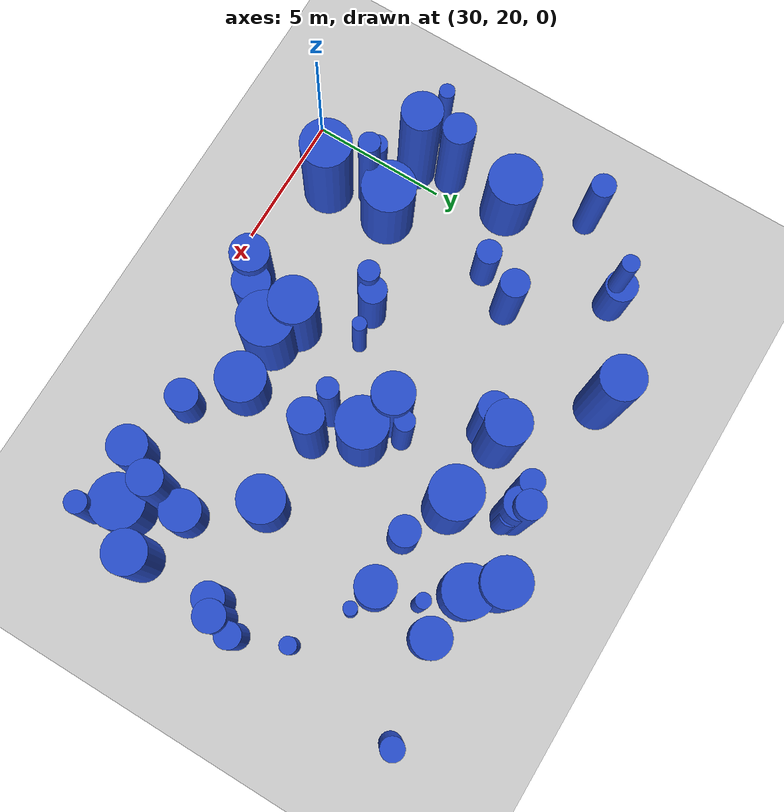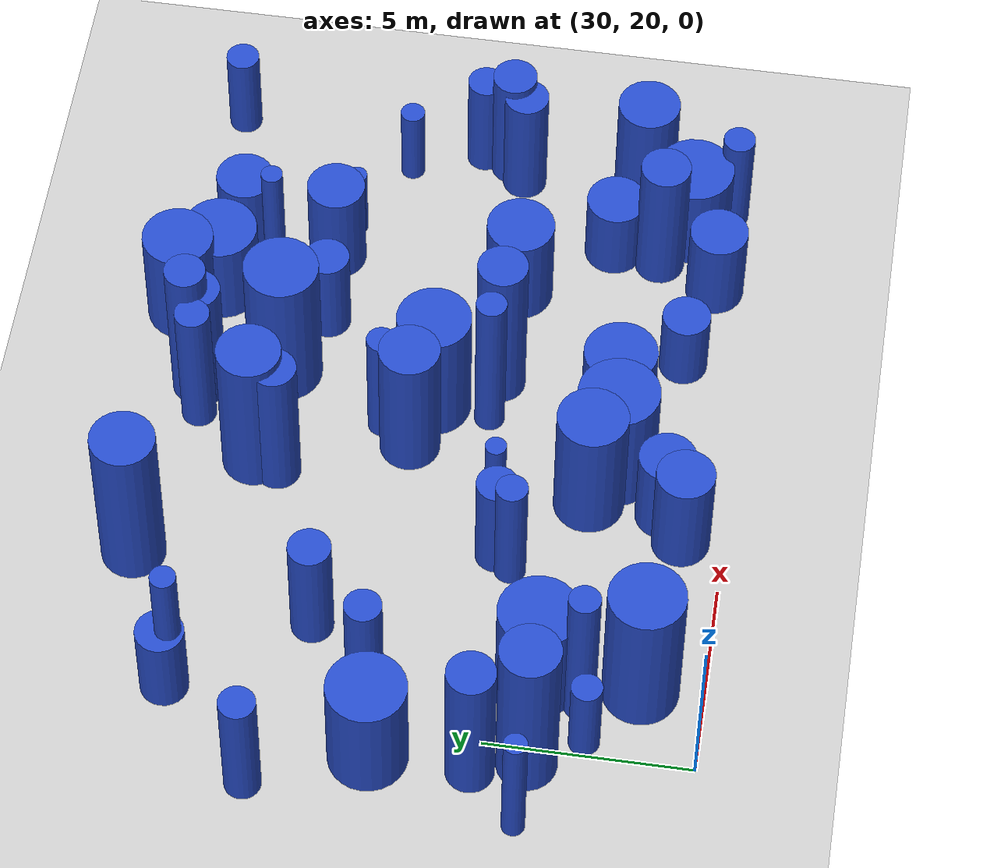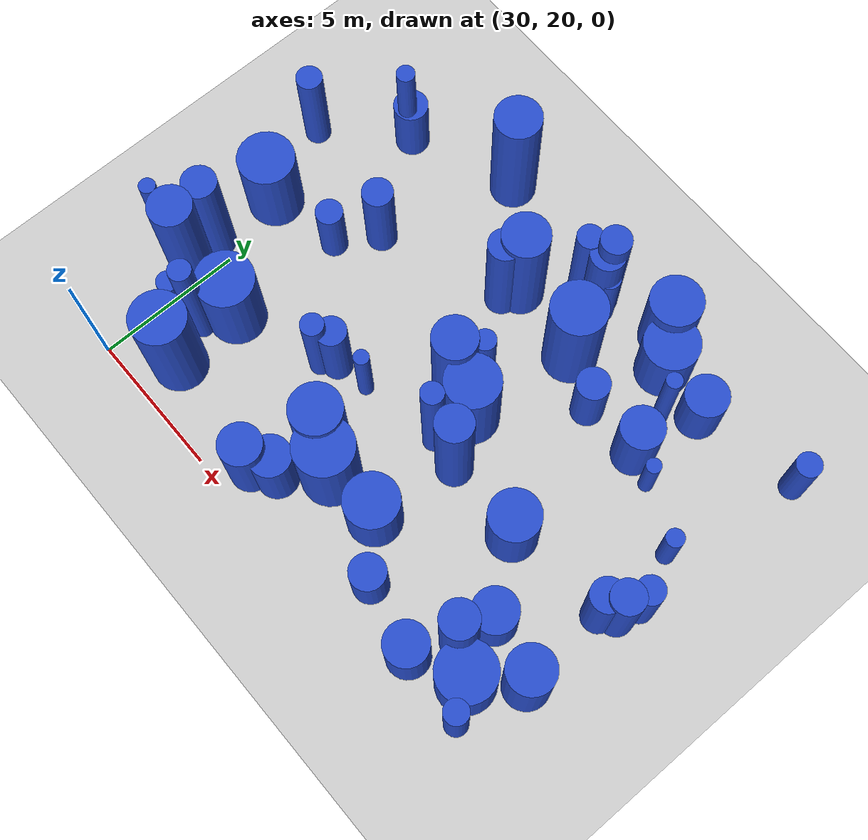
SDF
<sdf version="1.6">
 <world name="default">
  <model name="ground_plane">
   <static>1</static>
   <link name="link">
    <collision name="collision">
     <geometry><plane><normal>0 0 1</normal><size>100 100</size></plane></geometry>
     <surface><friction><ode><mu>100</mu><mu2>50</mu2></ode></friction></surface>
    </collision>
    <visual name="visual">
     <cast_shadows>0</cast_shadows>
     <geometry><plane><normal>0 0 1</normal><size>100 100</size></plane></geometry>
     <material>
      <script><uri>file://media/materials/scripts/gazebo.material</uri><name>Gazebo/Grey</name></script>
     </material>
    </visual>
   </link>
  </model>
  <model name="7">
   <static>0</static>
   <link name="link">
    <inertial>
     <mass>2</mass>
     <inertia><ixx>2.10084</ixx><ixy>0</ixy><ixz>0</ixz><iyy>2.10084</iyy><iyz>0</iyz><izz>0.955069</izz></inertia>
    </inertial>
    <collision name="collision">
     <geometry><cylinder><length>3.12087</length><radius>0.977276</radius></cylinder></geometry>
     <surface><contact><collide_without_contact>1</collide_without_contact></contact></surface>
    </collision>
    <visual name="visual">
     <geometry><cylinder><length>3.12087</length><radius>0.977276</radius></cylinder></geometry>
     <material>
      <script><uri>file://media/materials/scripts/gazebo.material</uri><name>Gazebo/Blue</name></script>
     </material>
    </visual>
    <gravity>0</gravity>
   </link>
   <pose>31.8249 23.959 1.56043 0 -0 0</pose>
  </model>
  <model name="23">
   <static>0</static>
   <link name="link">
    <inertial>
     <mass>2</mass>
     <inertia>
      <ixx>1.99669</ixx>
      <ixy>0</ixy>
      <ixz>0</ixz>
      <iyy>1.99669</iyy>
      <iyz>0</iyz>
      <izz>0.0728803</izz>
     </inertia>
    </inertial>
    <collision name="collision">
     <geometry><cylinder><length>3.42951</length><radius>0.269963</radius></cylinder></geometry>
     <surface><contact><collide_without_contact>1</collide_without_contact></contact></surface>
    </collision>
    <visual name="visual">
     <geometry><cylinder><length>3.42951</length><radius>0.269963</radius></cylinder></geometry>
     <material>
      <script><uri>file://media/materials/scripts/gazebo.material</uri><name>Gazebo/Blue</name></script>
     </material>
    </visual>
    <gravity>0</gravity>
   </link>
   <pose>43.393 32.1814 1.71475 0 -0 0</pose>
  </model>
  <model name="25">
   <static>0</static>
   <link name="link">
    <inertial>
     <mass>2</mass>
     <inertia><ixx>3.21255</ixx><ixy>0</ixy><ixz>0</ixz><iyy>3.21255</iyy><iyz>0</iyz><izz>0.847452</izz></inertia>
    </inertial>
    <collision name="collision">
     <geometry><cylinder><length>4.0906</length><radius>0.920571</radius></cylinder></geometry>
     <surface><contact><collide_without_contact>1</collide_without_contact></contact></surface>
    </collision>
    <visual name="visual">
     <geometry><cylinder><length>4.0906</length><radius>0.920571</radius></cylinder></geometry>
     <material>
      <script><uri>file://media/materials/scripts/gazebo.material</uri><name>Gazebo/Blue</name></script>
     </material>
    </visual>
    <gravity>0</gravity>
   </link>
   <pose>31.9637 21.5128 2.0453 0 -0 0</pose>
  </model>
  <model name="35">
   <static>0</static>
   <link name="link">
    <inertial>
     <mass>2</mass>
     <inertia><ixx>3.57551</ixx><ixy>0</ixy><ixz>0</ixz><iyy>3.57551</iyy><iyz>0</iyz><izz>0.622149</izz></inertia>
    </inertial>
    <collision name="collision">
     <geometry><cylinder><length>4.42568</length><radius>0.788764</radius></cylinder></geometry>
     <surface><contact><collide_without_contact>1</collide_without_contact></contact></surface>
    </collision>
    <visual name="visual">
     <geometry><cylinder><length>4.42568</length><radius>0.788764</radius></cylinder></geometry>
     <material>
      <script><uri>file://media/materials/scripts/gazebo.material</uri><name>Gazebo/Blue</name></script>
     </material>
    </visual>
    <gravity>0</gravity>
   </link>
   <pose>37.2175 31.6348 2.21284 0 -0 0</pose>
  </model>
  <model name="39">
   <static>0</static>
   <link name="link">
    <inertial>
     <mass>2</mass>
     <inertia><ixx>1.9999</ixx><ixy>0</ixy><ixz>0</ixz><iyy>1.9999</iyy><iyz>0</iyz><izz>0.310791</izz></inertia>
    </inertial>
    <collision name="collision">
     <geometry><cylinder><length>3.32671</length><radius>0.557487</radius></cylinder></geometry>
     <surface><contact><collide_without_contact>1</collide_without_contact></contact></surface>
    </collision>
    <visual name="visual">
     <geometry><cylinder><length>3.32671</length><radius>0.557487</radius></cylinder></geometry>
     <material>
      <script><uri>file://media/materials/scripts/gazebo.material</uri><name>Gazebo/Blue</name></script>
     </material>
    </visual>
    <gravity>0</gravity>
   </link>
   <pose>46.8839 26.2899 1.66335 0 -0 0</pose>
  </model>
  <model name="59">
   <static>0</static>
   <link name="link">
    <inertial>
     <mass>2</mass>
     <inertia><ixx>2.25511</ixx><ixy>0</ixy><ixz>0</ixz><iyy>2.25511</iyy><iyz>0</iyz><izz>0.311242</izz></inertia>
    </inertial>
    <collision name="collision">
     <geometry><cylinder><length>3.54921</length><radius>0.557891</radius></cylinder></geometry>
     <surface><contact><collide_without_contact>1</collide_without_contact></contact></surface>
    </collision>
    <visual name="visual">
     <geometry><cylinder><length>3.54921</length><radius>0.557891</radius></cylinder></geometry>
     <material>
      <script><uri>file://media/materials/scripts/gazebo.material</uri><name>Gazebo/Blue</name></script>
     </material>
    </visual>
    <gravity>0</gravity>
   </link>
   <pose>47.3223 26.6492 1.77461 0 -0 0</pose>
  </model>
  <model name="61">
   <static>0</static>
   <link name="link">
    <inertial>
     <mass>2</mass>
     <inertia><ixx>1.07857</ixx><ixy>0</ixy><ixz>0</ixz><iyy>1.07857</iyy><iyz>0</iyz><izz>0.520724</izz></inertia>
    </inertial>
    <collision name="collision">
     <geometry><cylinder><length>2.21568</length><radius>0.721612</radius></cylinder></geometry>
     <surface><contact><collide_without_contact>1</collide_without_contact></contact></surface>
    </collision>
    <visual name="visual">
     <geometry><cylinder><length>2.21568</length><radius>0.721612</radius></cylinder></geometry>
     <material>
      <script><uri>file://media/materials/scripts/gazebo.material</uri><name>Gazebo/Blue</name></script>
     </material>
    </visual>
    <gravity>0</gravity>
   </link>
   <pose>44.2138 33.044 1.10784 0 -0 0</pose>
  </model>
  <model name="83">
   <static>0</static>
   <link name="link">
    <inertial>
     <mass>2</mass>
     <inertia><ixx>1.94416</ixx><ixy>0</ixy><ixz>0</ixz><iyy>1.94416</iyy><iyz>0</iyz><izz>0.270411</izz></inertia>
    </inertial>
    <collision name="collision">
     <geometry><cylinder><length>3.2945</length><radius>0.52001</radius></cylinder></geometry>
     <surface><contact><collide_without_contact>1</collide_without_contact></contact></surface>
    </collision>
    <visual name="visual">
     <geometry><cylinder><length>3.2945</length><radius>0.52001</radius></cylinder></geometry>
     <material>
      <script><uri>file://media/materials/scripts/gazebo.material</uri><name>Gazebo/Blue</name></script>
     </material>
    </visual>
    <gravity>0</gravity>
   </link>
   <pose>32.6703 29.4361 1.64725 0 -0 0</pose>
  </model>
  <model name="86">
   <static>0</static>
   <link name="link">
    <inertial>
     <mass>2</mass>
     <inertia><ixx>2.20974</ixx><ixy>0</ixy><ixz>0</ixz><iyy>2.20974</iyy><iyz>0</iyz><izz>0.600986</izz></inertia>
    </inertial>
    <collision name="collision">
     <geometry><cylinder><length>3.38459</length><radius>0.775233</radius></cylinder></geometry>
     <surface><contact><collide_without_contact>1</collide_without_contact></contact></surface>
    </collision>
    <visual name="visual">
     <geometry><cylinder><length>3.38459</length><radius>0.775233</radius></cylinder></geometry>
     <material>
      <script><uri>file://media/materials/scripts/gazebo.material</uri><name>Gazebo/Blue</name></script>
     </material>
    </visual>
    <gravity>0</gravity>
   </link>
   <pose>47.0507 23.2137 1.6923 0 -0 0</pose>
  </model>
  <model name="126">
   <static>0</static>
   <link name="link">
    <inertial>
     <mass>2</mass>
     <inertia><ixx>1.27835</ixx><ixy>0</ixy><ixz>0</ixz><iyy>1.27835</iyy><iyz>0</iyz><izz>0.146754</izz></inertia>
    </inertial>
    <collision name="collision">
     <geometry><cylinder><length>2.68883</length><radius>0.383085</radius></cylinder></geometry>
     <surface><contact><collide_without_contact>1</collide_without_contact></contact></surface>
    </collision>
    <visual name="visual">
     <geometry><cylinder><length>2.68883</length><radius>0.383085</radius></cylinder></geometry>
     <material>
      <script><uri>file://media/materials/scripts/gazebo.material</uri><name>Gazebo/Blue</name></script>
     </material>
    </visual>
    <gravity>0</gravity>
   </link>
   <pose>39.4717 33.2369 1.34442 0 -0 0</pose>
  </model>
  <model name="144">
   <static>0</static>
   <link name="link">
    <inertial>
     <mass>2</mass>
     <inertia><ixx>1.29793</ixx><ixy>0</ixy><ixz>0</ixz><iyy>1.29793</iyy><iyz>0</iyz><izz>0.832214</izz></inertia>
    </inertial>
    <collision name="collision">
     <geometry><cylinder><length>2.30021</length><radius>0.912257</radius></cylinder></geometry>
     <surface><contact><collide_without_contact>1</collide_without_contact></contact></surface>
    </collision>
    <visual name="visual">
     <geometry><cylinder><length>2.30021</length><radius>0.912257</radius></cylinder></geometry>
     <material>
      <script><uri>file://media/materials/scripts/gazebo.material</uri><name>Gazebo/Blue</name></script>
     </material>
    </visual>
    <gravity>0</gravity>
   </link>
   <pose>40.0746 23.0411 1.1501 0 -0 0</pose>
  </model>
  <model name="150">
   <static>0</static>
   <link name="link">
    <inertial>
     <mass>2</mass>
     <inertia><ixx>1.20795</ixx><ixy>0</ixy><ixz>0</ixz><iyy>1.20795</iyy><iyz>0</iyz><izz>0.525893</izz></inertia>
    </inertial>
    <collision name="collision">
     <geometry><cylinder><length>2.38118</length><radius>0.725185</radius></cylinder></geometry>
     <surface><contact><collide_without_contact>1</collide_without_contact></contact></surface>
    </collision>
    <visual name="visual">
     <geometry><cylinder><length>2.38118</length><radius>0.725185</radius></cylinder></geometry>
     <material>
      <script><uri>file://media/materials/scripts/gazebo.material</uri><name>Gazebo/Blue</name></script>
     </material>
    </visual>
    <gravity>0</gravity>
   </link>
   <pose>44.0581 21.0779 1.19059 0 -0 0</pose>
  </model>
  <model name="155">
   <static>0</static>
   <link name="link">
    <inertial>
     <mass>2</mass>
     <inertia><ixx>2.79613</ixx><ixy>0</ixy><ixz>0</ixz><iyy>2.79613</iyy><iyz>0</iyz><izz>0.33972</izz></inertia>
    </inertial>
    <collision name="collision">
     <geometry><cylinder><length>3.96959</length><radius>0.582855</radius></cylinder></geometry>
     <surface><contact><collide_without_contact>1</collide_without_contact></contact></surface>
    </collision>
    <visual name="visual">
     <geometry><cylinder><length>3.96959</length><radius>0.582855</radius></cylinder></geometry>
     <material>
      <script><uri>file://media/materials/scripts/gazebo.material</uri><name>Gazebo/Blue</name></script>
     </material>
    </visual>
    <gravity>0</gravity>
   </link>
   <pose>39.1888 33.2764 1.98479 0 -0 0</pose>
  </model>
  <model name="174">
   <static>0</static>
   <link name="link">
    <inertial>
     <mass>2</mass>
     <inertia><ixx>1.76318</ixx><ixy>0</ixy><ixz>0</ixz><iyy>1.76318</iyy><iyz>0</iyz><izz>0.613223</izz></inertia>
    </inertial>
    <collision name="collision">
     <geometry><cylinder><length>2.95625</length><radius>0.783086</radius></cylinder></geometry>
     <surface><contact><collide_without_contact>1</collide_without_contact></contact></surface>
    </collision>
    <visual name="visual">
     <geometry><cylinder><length>2.95625</length><radius>0.783086</radius></cylinder></geometry>
     <material>
      <script><uri>file://media/materials/scripts/gazebo.material</uri><name>Gazebo/Blue</name></script>
     </material>
    </visual>
    <gravity>0</gravity>
   </link>
   <pose>38.1527 22.7004 1.47812 0 -0 0</pose>
  </model>
  <model name="175">
   <static>0</static>
   <link name="link">
    <inertial>
     <mass>2</mass>
     <inertia><ixx>1.56998</ixx><ixy>0</ixy><ixz>0</ixz><iyy>1.56998</iyy><iyz>0</iyz><izz>0.215469</izz></inertia>
    </inertial>
    <collision name="collision">
     <geometry><cylinder><length>2.962</length><radius>0.464186</radius></cylinder></geometry>
     <surface><contact><collide_without_contact>1</collide_without_contact></contact></surface>
    </collision>
    <visual name="visual">
     <geometry><cylinder><length>2.962</length><radius>0.464186</radius></cylinder></geometry>
     <material>
      <script><uri>file://media/materials/scripts/gazebo.material</uri><name>Gazebo/Blue</name></script>
     </material>
    </visual>
    <gravity>0</gravity>
   </link>
   <pose>47.5551 27.4058 1.481 0 -0 0</pose>
  </model>
  <model name="186">
   <static>0</static>
   <link name="link">
    <inertial>
     <mass>2</mass>
     <inertia><ixx>2.05452</ixx><ixy>0</ixy><ixz>0</ixz><iyy>2.05452</iyy><iyz>0</iyz><izz>0.150024</izz></inertia>
    </inertial>
    <collision name="collision">
     <geometry><cylinder><length>3.44631</length><radius>0.387329</radius></cylinder></geometry>
     <surface><contact><collide_without_contact>1</collide_without_contact></contact></surface>
    </collision>
    <visual name="visual">
     <geometry><cylinder><length>3.44631</length><radius>0.387329</radius></cylinder></geometry>
     <material>
      <script><uri>file://media/materials/scripts/gazebo.material</uri><name>Gazebo/Blue</name></script>
     </material>
    </visual>
    <gravity>0</gravity>
   </link>
   <pose>34.9087 25.0154 1.72316 0 -0 0</pose>
  </model>
  <model name="189">
   <static>0</static>
   <link name="link">
    <inertial>
     <mass>2</mass>
     <inertia><ixx>3.3322</ixx><ixy>0</ixy><ixz>0</ixz><iyy>3.3322</iyy><iyz>0</iyz><izz>0.849902</izz></inertia>
    </inertial>
    <collision name="collision">
     <geometry><cylinder><length>4.17654</length><radius>0.921901</radius></cylinder></geometry>
     <surface><contact><collide_without_contact>1</collide_without_contact></contact></surface>
    </collision>
    <visual name="visual">
     <geometry><cylinder><length>4.17654</length><radius>0.921901</radius></cylinder></geometry>
     <material>
      <script><uri>file://media/materials/scripts/gazebo.material</uri><name>Gazebo/Blue</name></script>
     </material>
    </visual>
    <gravity>0</gravity>
   </link>
   <pose>39.9815 31.3426 2.08827 0 -0 0</pose>
  </model>
  <model name="191">
   <static>0</static>
   <link name="link">
    <inertial>
     <mass>2</mass>
     <inertia>
      <ixx>0.984393</ixx>
      <ixy>0</ixy>
      <ixz>0</ixz>
      <iyy>0.984393</iyy>
      <iyz>0</iyz>
      <izz>0.552445</izz>
     </inertia>
    </inertial>
    <collision name="collision">
     <geometry><cylinder><length>2.06132</length><radius>0.743266</radius></cylinder></geometry>
     <surface><contact><collide_without_contact>1</collide_without_contact></contact></surface>
    </collision>
    <visual name="visual">
     <geometry><cylinder><length>2.06132</length><radius>0.743266</radius></cylinder></geometry>
     <material>
      <script><uri>file://media/materials/scripts/gazebo.material</uri><name>Gazebo/Blue</name></script>
     </material>
    </visual>
    <gravity>0</gravity>
   </link>
   <pose>44.9695 23.7353 1.03066 0 -0 0</pose>
  </model>
  <model name="206">
   <static>0</static>
   <link name="link">
    <inertial>
     <mass>2</mass>
     <inertia><ixx>3.80967</ixx><ixy>0</ixy><ixz>0</ixz><iyy>3.80967</iyy><iyz>0</iyz><izz>0.380412</izz></inertia>
    </inertial>
    <collision name="collision">
     <geometry><cylinder><length>4.66013</length><radius>0.616775</radius></cylinder></geometry>
     <surface><contact><collide_without_contact>1</collide_without_contact></contact></surface>
    </collision>
    <visual name="visual">
     <geometry><cylinder><length>4.66013</length><radius>0.616775</radius></cylinder></geometry>
     <material>
      <script><uri>file://media/materials/scripts/gazebo.material</uri><name>Gazebo/Blue</name></script>
     </material>
    </visual>
    <gravity>0</gravity>
   </link>
   <pose>40.4302 26.0122 2.33007 0 -0 0</pose>
  </model>
  <model name="237">
   <static>0</static>
   <link name="link">
    <inertial>
     <mass>2</mass>
     <inertia><ixx>1.98057</ixx><ixy>0</ixy><ixz>0</ixz><iyy>1.98057</iyy><iyz>0</iyz><izz>0.912841</izz></inertia>
    </inertial>
    <collision name="collision">
     <geometry><cylinder><length>3.02405</length><radius>0.955427</radius></cylinder></geometry>
     <surface><contact><collide_without_contact>1</collide_without_contact></contact></surface>
    </collision>
    <visual name="visual">
     <geometry><cylinder><length>3.02405</length><radius>0.955427</radius></cylinder></geometry>
     <material>
      <script><uri>file://media/materials/scripts/gazebo.material</uri><name>Gazebo/Blue</name></script>
     </material>
    </visual>
    <gravity>0</gravity>
   </link>
   <pose>29.2851 27.5652 1.51203 0 -0 0</pose>
  </model>
  <model name="242">
   <static>0</static>
   <link name="link">
    <inertial>
     <mass>2</mass>
     <inertia><ixx>1.25281</ixx><ixy>0</ixy><ixz>0</ixz><iyy>1.25281</iyy><iyz>0</iyz><izz>0.303901</izz></inertia>
    </inertial>
    <collision name="collision">
     <geometry><cylinder><length>2.57005</length><radius>0.551272</radius></cylinder></geometry>
     <surface><contact><collide_without_contact>1</collide_without_contact></contact></surface>
    </collision>
    <visual name="visual">
     <geometry><cylinder><length>2.57005</length><radius>0.551272</radius></cylinder></geometry>
     <material>
      <script><uri>file://media/materials/scripts/gazebo.material</uri><name>Gazebo/Blue</name></script>
     </material>
    </visual>
    <gravity>0</gravity>
   </link>
   <pose>41.7102 30.5342 1.28502 0 -0 0</pose>
  </model>
  <model name="243">
   <static>0</static>
   <link name="link">
    <inertial>
     <mass>2</mass>
     <inertia><ixx>2.64476</ixx><ixy>0</ixy><ixz>0</ixz><iyy>2.64476</iyy><iyz>0</iyz><izz>0.384883</izz></inertia>
    </inertial>
    <collision name="collision">
     <geometry><cylinder><length>3.83587</length><radius>0.62039</radius></cylinder></geometry>
     <surface><contact><collide_without_contact>1</collide_without_contact></contact></surface>
    </collision>
    <visual name="visual">
     <geometry><cylinder><length>3.83587</length><radius>0.62039</radius></cylinder></geometry>
     <material>
      <script><uri>file://media/materials/scripts/gazebo.material</uri><name>Gazebo/Blue</name></script>
     </material>
    </visual>
    <gravity>0</gravity>
   </link>
   <pose>44.712 22.5458 1.91794 0 -0 0</pose>
  </model>
  <model name="250">
   <static>0</static>
   <link name="link">
    <inertial>
     <mass>2</mass>
     <inertia><ixx>1.24418</ixx><ixy>0</ixy><ixz>0</ixz><iyy>1.24418</iyy><iyz>0</iyz><izz>0.488213</izz></inertia>
    </inertial>
    <collision name="collision">
     <geometry><cylinder><length>2.44958</length><radius>0.698723</radius></cylinder></geometry>
     <surface><contact><collide_without_contact>1</collide_without_contact></contact></surface>
    </collision>
    <visual name="visual">
     <geometry><cylinder><length>2.44958</length><radius>0.698723</radius></cylinder></geometry>
     <material>
      <script><uri>file://media/materials/scripts/gazebo.material</uri><name>Gazebo/Blue</name></script>
     </material>
    </visual>
    <gravity>0</gravity>
   </link>
   <pose>37.0437 21.5574 1.22479 0 -0 0</pose>
  </model>
  <model name="254">
   <static>0</static>
   <link name="link">
    <inertial>
     <mass>2</mass>
     <inertia><ixx>4.23046</ixx><ixy>0</ixy><ixz>0</ixz><iyy>4.23046</iyy><iyz>0</iyz><izz>0.523294</izz></inertia>
    </inertial>
    <collision name="collision">
     <geometry><cylinder><length>4.87984</length><radius>0.723391</radius></cylinder></geometry>
     <surface><contact><collide_without_contact>1</collide_without_contact></contact></surface>
    </collision>
    <visual name="visual">
     <geometry><cylinder><length>4.87984</length><radius>0.723391</radius></cylinder></geometry>
     <material>
      <script><uri>file://media/materials/scripts/gazebo.material</uri><name>Gazebo/Blue</name></script>
     </material>
    </visual>
    <gravity>0</gravity>
   </link>
   <pose>29.6183 23.8916 2.43992 0 -0 0</pose>
  </model>
  <model name="265">
   <static>0</static>
   <link name="link">
    <inertial>
     <mass>2</mass>
     <inertia><ixx>3.20609</ixx><ixy>0</ixy><ixz>0</ixz><iyy>3.20609</iyy><iyz>0</iyz><izz>0.343514</izz></inertia>
    </inertial>
    <collision name="collision">
     <geometry><cylinder><length>4.26685</length><radius>0.586101</radius></cylinder></geometry>
     <surface><contact><collide_without_contact>1</collide_without_contact></contact></surface>
    </collision>
    <visual name="visual">
     <geometry><cylinder><length>4.26685</length><radius>0.586101</radius></cylinder></geometry>
     <material>
      <script><uri>file://media/materials/scripts/gazebo.material</uri><name>Gazebo/Blue</name></script>
     </material>
    </visual>
    <gravity>0</gravity>
   </link>
   <pose>29.2297 25.1648 2.13342 0 -0 0</pose>
  </model>
  <model name="266">
   <static>0</static>
   <link name="link">
    <inertial>
     <mass>2</mass>
     <inertia><ixx>1.58215</ixx><ixy>0</ixy><ixz>0</ixz><iyy>1.58215</iyy><iyz>0</iyz><izz>0.715017</izz></inertia>
    </inertial>
    <collision name="collision">
     <geometry><cylinder><length>2.71069</length><radius>0.845587</radius></cylinder></geometry>
     <surface><contact><collide_without_contact>1</collide_without_contact></contact></surface>
    </collision>
    <visual name="visual">
     <geometry><cylinder><length>2.71069</length><radius>0.845587</radius></cylinder></geometry>
     <material>
      <script><uri>file://media/materials/scripts/gazebo.material</uri><name>Gazebo/Blue</name></script>
     </material>
    </visual>
    <gravity>0</gravity>
   </link>
   <pose>43.2837 25.9401 1.35535 0 -0 0</pose>
  </model>
  <model name="290">
   <static>0</static>
   <link name="link">
    <inertial>
     <mass>2</mass>
     <inertia><ixx>2.48746</ixx><ixy>0</ixy><ixz>0</ixz><iyy>2.48746</iyy><iyz>0</iyz><izz>0.74901</izz></inertia>
    </inertial>
    <collision name="collision">
     <geometry><cylinder><length>3.56058</length><radius>0.865454</radius></cylinder></geometry>
     <surface><contact><collide_without_contact>1</collide_without_contact></contact></surface>
    </collision>
    <visual name="visual">
     <geometry><cylinder><length>3.56058</length><radius>0.865454</radius></cylinder></geometry>
     <material>
      <script><uri>file://media/materials/scripts/gazebo.material</uri><name>Gazebo/Blue</name></script>
     </material>
    </visual>
    <gravity>0</gravity>
   </link>
   <pose>37.1256 23.3915 1.78029 0 -0 0</pose>
  </model>
  <model name="301">
   <static>0</static>
   <link name="link">
    <inertial>
     <mass>2</mass>
     <inertia><ixx>1.62491</ixx><ixy>0</ixy><ixz>0</ixz><iyy>1.62491</iyy><iyz>0</iyz><izz>0.507202</izz></inertia>
    </inertial>
    <collision name="collision">
     <geometry><cylinder><length>2.86842</length><radius>0.712181</radius></cylinder></geometry>
     <surface><contact><collide_without_contact>1</collide_without_contact></contact></surface>
    </collision>
    <visual name="visual">
     <geometry><cylinder><length>2.86842</length><radius>0.712181</radius></cylinder></geometry>
     <material>
      <script><uri>file://media/materials/scripts/gazebo.material</uri><name>Gazebo/Blue</name></script>
     </material>
    </visual>
    <gravity>0</gravity>
   </link>
   <pose>36.3097 21.0619 1.43421 0 -0 0</pose>
  </model>
  <model name="305">
   <static>0</static>
   <link name="link">
    <inertial>
     <mass>2</mass>
     <inertia><ixx>3.71583</ixx><ixy>0</ixy><ixz>0</ixz><iyy>3.71583</iyy><iyz>0</iyz><izz>0.256297</izz></inertia>
    </inertial>
    <collision name="collision">
     <geometry><cylinder><length>4.63962</length><radius>0.506258</radius></cylinder></geometry>
     <surface><contact><collide_without_contact>1</collide_without_contact></contact></surface>
    </collision>
    <visual name="visual">
     <geometry><cylinder><length>4.63962</length><radius>0.506258</radius></cylinder></geometry>
     <material>
      <script><uri>file://media/materials/scripts/gazebo.material</uri><name>Gazebo/Blue</name></script>
     </material>
    </visual>
    <gravity>0</gravity>
   </link>
   <pose>39.1815 33.5185 2.31981 0 -0 0</pose>
  </model>
  <model name="312">
   <static>0</static>
   <link name="link">
    <inertial>
     <mass>2</mass>
     <inertia>
      <ixx>0.915979</ixx>
      <ixy>0</ixy>
      <ixz>0</ixz>
      <iyy>0.915979</iyy>
      <iyz>0</iyz>
      <izz>0.0925004</izz>
     </inertia>
    </inertial>
    <collision name="collision">
     <geometry><cylinder><length>2.28438</length><radius>0.304139</radius></cylinder></geometry>
     <surface><contact><collide_without_contact>1</collide_without_contact></contact></surface>
    </collision>
    <visual name="visual">
     <geometry><cylinder><length>2.28438</length><radius>0.304139</radius></cylinder></geometry>
     <material>
      <script><uri>file://media/materials/scripts/gazebo.material</uri><name>Gazebo/Blue</name></script>
     </material>
    </visual>
    <gravity>0</gravity>
   </link>
   <pose>46.8346 29.1844 1.14219 0 -0 0</pose>
  </model>
  <model name="317">
   <static>0</static>
   <link name="link">
    <inertial>
     <mass>2</mass>
     <inertia><ixx>1.35</ixx><ixy>0</ixy><ixz>0</ixz><iyy>1.35</iyy><iyz>0</iyz><izz>0.0675958</izz></inertia>
    </inertial>
    <collision name="collision">
     <geometry><cylinder><length>2.8102</length><radius>0.259992</radius></cylinder></geometry>
     <surface><contact><collide_without_contact>1</collide_without_contact></contact></surface>
    </collision>
    <visual name="visual">
     <geometry><cylinder><length>2.8102</length><radius>0.259992</radius></cylinder></geometry>
     <material>
      <script><uri>file://media/materials/scripts/gazebo.material</uri><name>Gazebo/Blue</name></script>
     </material>
    </visual>
    <gravity>0</gravity>
   </link>
   <pose>36.4964 25.6086 1.4051 0 -0 0</pose>
  </model>
  <model name="318">
   <static>0</static>
   <link name="link">
    <inertial>
     <mass>2</mass>
     <inertia><ixx>2.16367</ixx><ixy>0</ixy><ixz>0</ixz><iyy>2.16367</iyy><iyz>0</iyz><izz>0.194537</izz></inertia>
    </inertial>
    <collision name="collision">
     <geometry><cylinder><length>3.52113</length><radius>0.441064</radius></cylinder></geometry>
     <surface><contact><collide_without_contact>1</collide_without_contact></contact></surface>
    </collision>
    <visual name="visual">
     <geometry><cylinder><length>3.52113</length><radius>0.441064</radius></cylinder></geometry>
     <material>
      <script><uri>file://media/materials/scripts/gazebo.material</uri><name>Gazebo/Blue</name></script>
     </material>
    </visual>
    <gravity>0</gravity>
   </link>
   <pose>28.1401 30.3126 1.76057 0 -0 0</pose>
  </model>
  <model name="325">
   <static>0</static>
   <link name="link">
    <inertial>
     <mass>2</mass>
     <inertia><ixx>1.08442</ixx><ixy>0</ixy><ixz>0</ixz><iyy>1.08442</iyy><iyz>0</iyz><izz>0.209623</izz></inertia>
    </inertial>
    <collision name="collision">
     <geometry><cylinder><length>2.42439</length><radius>0.457846</radius></cylinder></geometry>
     <surface><contact><collide_without_contact>1</collide_without_contact></contact></surface>
    </collision>
    <visual name="visual">
     <geometry><cylinder><length>2.42439</length><radius>0.457846</radius></cylinder></geometry>
     <material>
      <script><uri>file://media/materials/scripts/gazebo.material</uri><name>Gazebo/Blue</name></script>
     </material>
    </visual>
    <gravity>0</gravity>
   </link>
   <pose>31.8314 28.0575 1.2122 0 -0 0</pose>
  </model>
  <model name="337">
   <static>0</static>
   <link name="link">
    <inertial>
     <mass>2</mass>
     <inertia>
      <ixx>2.22228</ixx>
      <ixy>0</ixy>
      <ixz>0</ixz>
      <iyy>2.22228</iyy>
      <iyz>0</iyz>
      <izz>0.0783504</izz>
     </inertia>
    </inertial>
    <collision name="collision">
     <geometry><cylinder><length>3.6192</length><radius>0.279911</radius></cylinder></geometry>
     <surface><contact><collide_without_contact>1</collide_without_contact></contact></surface>
    </collision>
    <visual name="visual">
     <geometry><cylinder><length>3.6192</length><radius>0.279911</radius></cylinder></geometry>
     <material>
      <script><uri>file://media/materials/scripts/gazebo.material</uri><name>Gazebo/Blue</name></script>
     </material>
    </visual>
    <gravity>0</gravity>
   </link>
   <pose>27.9422 23.9761 1.8096 0 -0 0</pose>
  </model>
  <model name="338">
   <static>0</static>
   <link name="link">
    <inertial>
     <mass>2</mass>
     <inertia><ixx>2.79388</ixx><ixy>0</ixy><ixz>0</ixz><iyy>2.79388</iyy><iyz>0</iyz><izz>0.184707</izz></inertia>
    </inertial>
    <collision name="collision">
     <geometry><cylinder><length>4.02606</length><radius>0.429776</radius></cylinder></geometry>
     <surface><contact><collide_without_contact>1</collide_without_contact></contact></surface>
    </collision>
    <visual name="visual">
     <geometry><cylinder><length>4.02606</length><radius>0.429776</radius></cylinder></geometry>
     <material>
      <script><uri>file://media/materials/scripts/gazebo.material</uri><name>Gazebo/Blue</name></script>
     </material>
    </visual>
    <gravity>0</gravity>
   </link>
   <pose>38.4033 33.2286 2.01303 0 -0 0</pose>
  </model>
  <model name="339">
   <static>0</static>
   <link name="link">
    <inertial>
     <mass>2</mass>
     <inertia><ixx>2.36102</ixx><ixy>0</ixy><ixz>0</ixz><iyy>2.36102</iyy><iyz>0</iyz><izz>0.992334</izz></inertia>
    </inertial>
    <collision name="collision">
     <geometry><cylinder><length>3.34502</length><radius>0.99616</radius></cylinder></geometry>
     <surface><contact><collide_without_contact>1</collide_without_contact></contact></surface>
    </collision>
    <visual name="visual">
     <geometry><cylinder><length>3.34502</length><radius>0.99616</radius></cylinder></geometry>
     <material>
      <script><uri>file://media/materials/scripts/gazebo.material</uri><name>Gazebo/Blue</name></script>
     </material>
    </visual>
    <gravity>0</gravity>
   </link>
   <pose>38.1154 22.8783 1.67251 0 -0 0</pose>
  </model>
  <model name="357">
   <static>0</static>
   <link name="link">
    <inertial>
     <mass>2</mass>
     <inertia><ixx>1.1526</ixx><ixy>0</ixy><ixz>0</ixz><iyy>1.1526</iyy><iyz>0</iyz><izz>0.173712</izz></inertia>
    </inertial>
    <collision name="collision">
     <geometry><cylinder><length>2.52873</length><radius>0.416787</radius></cylinder></geometry>
     <surface><contact><collide_without_contact>1</collide_without_contact></contact></surface>
    </collision>
    <visual name="visual">
     <geometry><cylinder><length>2.52873</length><radius>0.416787</radius></cylinder></geometry>
     <material>
      <script><uri>file://media/materials/scripts/gazebo.material</uri><name>Gazebo/Blue</name></script>
     </material>
    </visual>
    <gravity>0</gravity>
   </link>
   <pose>47.8338 33.7345 1.26436 0 -0 0</pose>
  </model>
  <model name="365">
   <static>0</static>
   <link name="link">
    <inertial>
     <mass>2</mass>
     <inertia><ixx>1.44807</ixx><ixy>0</ixy><ixz>0</ixz><iyy>1.44807</iyy><iyz>0</iyz><izz>0.857439</izz></inertia>
    </inertial>
    <collision name="collision">
     <geometry><cylinder><length>2.47308</length><radius>0.92598</radius></cylinder></geometry>
     <surface><contact><collide_without_contact>1</collide_without_contact></contact></surface>
    </collision>
    <visual name="visual">
     <geometry><cylinder><length>2.47308</length><radius>0.92598</radius></cylinder></geometry>
     <material>
      <script><uri>file://media/materials/scripts/gazebo.material</uri><name>Gazebo/Blue</name></script>
     </material>
    </visual>
    <gravity>0</gravity>
   </link>
   <pose>42.2894 33.3258 1.23654 0 -0 0</pose>
  </model>
  <model name="369">
   <static>0</static>
   <link name="link">
    <inertial>
     <mass>2</mass>
     <inertia><ixx>3.10026</ixx><ixy>0</ixy><ixz>0</ixz><iyy>3.10026</iyy><iyz>0</iyz><izz>0.316244</izz></inertia>
    </inertial>
    <collision name="collision">
     <geometry><cylinder><length>4.20153</length><radius>0.562356</radius></cylinder></geometry>
     <surface><contact><collide_without_contact>1</collide_without_contact></contact></surface>
    </collision>
    <visual name="visual">
     <geometry><cylinder><length>4.20153</length><radius>0.562356</radius></cylinder></geometry>
     <material>
      <script><uri>file://media/materials/scripts/gazebo.material</uri><name>Gazebo/Blue</name></script>
     </material>
    </visual>
    <gravity>0</gravity>
   </link>
   <pose>36.9742 31.0118 2.10076 0 -0 0</pose>
  </model>
  <model name="390">
   <static>0</static>
   <link name="link">
    <inertial>
     <mass>2</mass>
     <inertia><ixx>1.63209</ixx><ixy>0</ixy><ixz>0</ixz><iyy>1.63209</iyy><iyz>0</iyz><izz>0.25668</izz></inertia>
    </inertial>
    <collision name="collision">
     <geometry><cylinder><length>3.00375</length><radius>0.506636</radius></cylinder></geometry>
     <surface><contact><collide_without_contact>1</collide_without_contact></contact></surface>
    </collision>
    <visual name="visual">
     <geometry><cylinder><length>3.00375</length><radius>0.506636</radius></cylinder></geometry>
     <material>
      <script><uri>file://media/materials/scripts/gazebo.material</uri><name>Gazebo/Blue</name></script>
     </material>
    </visual>
    <gravity>0</gravity>
   </link>
   <pose>35.2946 25.4079 1.50187 0 -0 0</pose>
  </model>
  <model name="394">
   <static>0</static>
   <link name="link">
    <inertial>
     <mass>2</mass>
     <inertia><ixx>1.6221</ixx><ixy>0</ixy><ixz>0</ixz><iyy>1.6221</iyy><iyz>0</iyz><izz>0.159086</izz></inertia>
    </inertial>
    <collision name="collision">
     <geometry><cylinder><length>3.04226</length><radius>0.398856</radius></cylinder></geometry>
     <surface><contact><collide_without_contact>1</collide_without_contact></contact></surface>
    </collision>
    <visual name="visual">
     <geometry><cylinder><length>3.04226</length><radius>0.398856</radius></cylinder></geometry>
     <material>
      <script><uri>file://media/materials/scripts/gazebo.material</uri><name>Gazebo/Blue</name></script>
     </material>
    </visual>
    <gravity>0</gravity>
   </link>
   <pose>46.5331 20.8727 1.52113 0 -0 0</pose>
  </model>
  <model name="395">
   <static>0</static>
   <link name="link">
    <inertial>
     <mass>2</mass>
     <inertia><ixx>3.60816</ixx><ixy>0</ixy><ixz>0</ixz><iyy>3.60816</iyy><iyz>0</iyz><izz>0.140273</izz></inertia>
    </inertial>
    <collision name="collision">
     <geometry><cylinder><length>4.6074</length><radius>0.37453</radius></cylinder></geometry>
     <surface><contact><collide_without_contact>1</collide_without_contact></contact></surface>
    </collision>
    <visual name="visual">
     <geometry><cylinder><length>4.6074</length><radius>0.37453</radius></cylinder></geometry>
     <material>
      <script><uri>file://media/materials/scripts/gazebo.material</uri><name>Gazebo/Blue</name></script>
     </material>
    </visual>
    <gravity>0</gravity>
   </link>
   <pose>39.2963 26.1284 2.3037 0 -0 0</pose>
  </model>
  <model name="396">
   <static>0</static>
   <link name="link">
    <inertial>
     <mass>2</mass>
     <inertia><ixx>1.86997</ixx><ixy>0</ixy><ixz>0</ixz><iyy>1.86997</iyy><iyz>0</iyz><izz>0.774428</izz></inertia>
    </inertial>
    <collision name="collision">
     <geometry><cylinder><length>2.9827</length><radius>0.880016</radius></cylinder></geometry>
     <surface><contact><collide_without_contact>1</collide_without_contact></contact></surface>
    </collision>
    <visual name="visual">
     <geometry><cylinder><length>2.9827</length><radius>0.880016</radius></cylinder></geometry>
     <material>
      <script><uri>file://media/materials/scripts/gazebo.material</uri><name>Gazebo/Blue</name></script>
     </material>
    </visual>
    <gravity>0</gravity>
   </link>
   <pose>41.4628 34.2057 1.49135 0 -0 0</pose>
  </model>
  <model name="410">
   <static>0</static>
   <link name="link">
    <inertial>
     <mass>2</mass>
     <inertia>
      <ixx>0.849591</ixx>
      <ixy>0</ixy>
      <ixz>0</ixz>
      <iyy>0.849591</iyy>
      <iyz>0</iyz>
      <izz>0.358262</izz>
     </inertia>
    </inertial>
    <collision name="collision">
     <geometry><cylinder><length>2.00568</length><radius>0.59855</radius></cylinder></geometry>
     <surface><contact><collide_without_contact>1</collide_without_contact></contact></surface>
    </collision>
    <visual name="visual">
     <geometry><cylinder><length>2.00568</length><radius>0.59855</radius></cylinder></geometry>
     <material>
      <script><uri>file://media/materials/scripts/gazebo.material</uri><name>Gazebo/Blue</name></script>
     </material>
    </visual>
    <gravity>0</gravity>
   </link>
   <pose>41.6252 21.5987 1.00284 0 -0 0</pose>
  </model>
  <model name="413">
   <static>0</static>
   <link name="link">
    <inertial>
     <mass>2</mass>
     <inertia><ixx>2.50573</ixx><ixy>0</ixy><ixz>0</ixz><iyy>2.50573</iyy><iyz>0</iyz><izz>0.838666</izz></inertia>
    </inertial>
    <collision name="collision">
     <geometry><cylinder><length>3.53814</length><radius>0.915787</radius></cylinder></geometry>
     <surface><contact><collide_without_contact>1</collide_without_contact></contact></surface>
    </collision>
    <visual name="visual">
     <geometry><cylinder><length>3.53814</length><radius>0.915787</radius></cylinder></geometry>
     <material>
      <script><uri>file://media/materials/scripts/gazebo.material</uri><name>Gazebo/Blue</name></script>
     </material>
    </visual>
    <gravity>0</gravity>
   </link>
   <pose>39.492 27.5379 1.76907 0 -0 0</pose>
  </model>
  <model name="416">
   <static>0</static>
   <link name="link">
    <inertial>
     <mass>2</mass>
     <inertia><ixx>3.52075</ixx><ixy>0</ixy><ixz>0</ixz><iyy>3.52075</iyy><iyz>0</iyz><izz>0.145372</izz></inertia>
    </inertial>
    <collision name="collision">
     <geometry><cylinder><length>4.54845</length><radius>0.381276</radius></cylinder></geometry>
     <surface><contact><collide_without_contact>1</collide_without_contact></contact></surface>
    </collision>
    <visual name="visual">
     <geometry><cylinder><length>4.54845</length><radius>0.381276</radius></cylinder></geometry>
     <material>
      <script><uri>file://media/materials/scripts/gazebo.material</uri><name>Gazebo/Blue</name></script>
     </material>
    </visual>
    <gravity>0</gravity>
   </link>
   <pose>31.3624 22.8819 2.27422 0 -0 0</pose>
  </model>
  <model name="431">
   <static>0</static>
   <link name="link">
    <inertial>
     <mass>2</mass>
     <inertia><ixx>3.92884</ixx><ixy>0</ixy><ixz>0</ixz><iyy>3.92884</iyy><iyz>0</iyz><izz>0.617801</izz></inertia>
    </inertial>
    <collision name="collision">
     <geometry><cylinder><length>4.66043</length><radius>0.786003</radius></cylinder></geometry>
     <surface><contact><collide_without_contact>1</collide_without_contact></contact></surface>
    </collision>
    <visual name="visual">
     <geometry><cylinder><length>4.66043</length><radius>0.786003</radius></cylinder></geometry>
     <material>
      <script><uri>file://media/materials/scripts/gazebo.material</uri><name>Gazebo/Blue</name></script>
     </material>
    </visual>
    <gravity>0</gravity>
   </link>
   <pose>34.1088 34.037 2.33022 0 -0 0</pose>
  </model>
  <model name="435">
   <static>0</static>
   <link name="link">
    <inertial>
     <mass>2</mass>
     <inertia><ixx>1.56911</ixx><ixy>0</ixy><ixz>0</ixz><iyy>1.56911</iyy><iyz>0</iyz><izz>0.953502</izz></inertia>
    </inertial>
    <collision name="collision">
     <geometry><cylinder><length>2.56011</length><radius>0.976474</radius></cylinder></geometry>
     <surface><contact><collide_without_contact>1</collide_without_contact></contact></surface>
    </collision>
    <visual name="visual">
     <geometry><cylinder><length>2.56011</length><radius>0.976474</radius></cylinder></geometry>
     <material>
      <script><uri>file://media/materials/scripts/gazebo.material</uri><name>Gazebo/Blue</name></script>
     </material>
    </visual>
    <gravity>0</gravity>
   </link>
   <pose>45.8143 21.8807 1.28005 0 -0 0</pose>
  </model>
  <model name="436">
   <static>0</static>
   <link name="link">
    <inertial>
     <mass>2</mass>
     <inertia><ixx>1.07854</ixx><ixy>0</ixy><ixz>0</ixz><iyy>1.07854</iyy><iyz>0</iyz><izz>0.340266</izz></inertia>
    </inertial>
    <collision name="collision">
     <geometry><cylinder><length>2.33462</length><radius>0.583323</radius></cylinder></geometry>
     <surface><contact><collide_without_contact>1</collide_without_contact></contact></surface>
    </collision>
    <visual name="visual">
     <geometry><cylinder><length>2.33462</length><radius>0.583323</radius></cylinder></geometry>
     <material>
      <script><uri>file://media/materials/scripts/gazebo.material</uri><name>Gazebo/Blue</name></script>
     </material>
    </visual>
    <gravity>0</gravity>
   </link>
   <pose>30.4955 32.5985 1.16731 0 -0 0</pose>
  </model>
  <model name="441">
   <static>0</static>
   <link name="link">
    <inertial>
     <mass>2</mass>
     <inertia>
      <ixx>0.760849</ixx>
      <ixy>0</ixy>
      <ixz>0</ixz>
      <iyy>0.760849</iyy>
      <iyz>0</iyz>
      <izz>0.0645012</izz>
     </inertia>
    </inertial>
    <collision name="collision">
     <geometry><cylinder><length>2.09084</length><radius>0.253971</radius></cylinder></geometry>
     <surface><contact><collide_without_contact>1</collide_without_contact></contact></surface>
    </collision>
    <visual name="visual">
     <geometry><cylinder><length>2.09084</length><radius>0.253971</radius></cylinder></geometry>
     <material>
      <script><uri>file://media/materials/scripts/gazebo.material</uri><name>Gazebo/Blue</name></script>
     </material>
    </visual>
    <gravity>0</gravity>
   </link>
   <pose>44.7654 30.2893 1.04542 0 -0 0</pose>
  </model>
  <model name="449">
   <static>0</static>
   <link name="link">
    <inertial>
     <mass>2</mass>
     <inertia><ixx>1.02635</ixx><ixy>0</ixy><ixz>0</ixz><iyy>1.02635</iyy><iyz>0</iyz><izz>0.139244</izz></inertia>
    </inertial>
    <collision name="collision">
     <geometry><cylinder><length>2.39591</length><radius>0.373154</radius></cylinder></geometry>
     <surface><contact><collide_without_contact>1</collide_without_contact></contact></surface>
    </collision>
    <visual name="visual">
     <geometry><cylinder><length>2.39591</length><radius>0.373154</radius></cylinder></geometry>
     <material>
      <script><uri>file://media/materials/scripts/gazebo.material</uri><name>Gazebo/Blue</name></script>
     </material>
    </visual>
    <gravity>0</gravity>
   </link>
   <pose>30.3999 22.6479 1.19795 0 -0 0</pose>
  </model>
  <model name="465">
   <static>0</static>
   <link name="link">
    <inertial>
     <mass>2</mass>
     <inertia>
      <ixx>3.46969</ixx>
      <ixy>0</ixy>
      <ixz>0</ixz>
      <iyy>3.46969</iyy>
      <iyz>0</iyz>
      <izz>0.0959176</izz>
     </inertia>
    </inertial>
    <collision name="collision">
     <geometry><cylinder><length>4.53105</length><radius>0.309706</radius></cylinder></geometry>
     <surface><contact><collide_without_contact>1</collide_without_contact></contact></surface>
    </collision>
    <visual name="visual">
     <geometry><cylinder><length>4.53105</length><radius>0.309706</radius></cylinder></geometry>
     <material>
      <script><uri>file://media/materials/scripts/gazebo.material</uri><name>Gazebo/Blue</name></script>
     </material>
    </visual>
    <gravity>0</gravity>
   </link>
   <pose>30.5569 32.4084 2.26552 0 -0 0</pose>
  </model>
  <model name="467">
   <static>0</static>
   <link name="link">
    <inertial>
     <mass>2</mass>
     <inertia><ixx>2.06533</ixx><ixy>0</ixy><ixz>0</ixz><iyy>2.06533</iyy><iyz>0</iyz><izz>0.132793</izz></inertia>
    </inertial>
    <collision name="collision">
     <geometry><cylinder><length>3.46318</length><radius>0.364408</radius></cylinder></geometry>
     <surface><contact><collide_without_contact>1</collide_without_contact></contact></surface>
    </collision>
    <visual name="visual">
     <geometry><cylinder><length>3.46318</length><radius>0.364408</radius></cylinder></geometry>
     <material>
      <script><uri>file://media/materials/scripts/gazebo.material</uri><name>Gazebo/Blue</name></script>
     </material>
    </visual>
    <gravity>0</gravity>
   </link>
   <pose>38.7205 28.7035 1.73159 0 -0 0</pose>
  </model>
  <model name="479">
   <static>0</static>
   <link name="link">
    <inertial>
     <mass>2</mass>
     <inertia><ixx>1.56684</ixx><ixy>0</ixy><ixz>0</ixz><iyy>1.56684</iyy><iyz>0</iyz><izz>0.518005</izz></inertia>
    </inertial>
    <collision name="collision">
     <geometry><cylinder><length>2.80125</length><radius>0.719726</radius></cylinder></geometry>
     <surface><contact><collide_without_contact>1</collide_without_contact></contact></surface>
    </collision>
    <visual name="visual">
     <geometry><cylinder><length>2.80125</length><radius>0.719726</radius></cylinder></geometry>
     <material>
      <script><uri>file://media/materials/scripts/gazebo.material</uri><name>Gazebo/Blue</name></script>
     </material>
    </visual>
    <gravity>0</gravity>
   </link>
   <pose>43.7661 30.6455 1.40063 0 -0 0</pose>
  </model>
  <model name="483">
   <static>0</static>
   <link name="link">
    <inertial>
     <mass>2</mass>
     <inertia><ixx>1.30039</ixx><ixy>0</ixy><ixz>0</ixz><iyy>1.30039</iyy><iyz>0</iyz><izz>0.332813</izz></inertia>
    </inertial>
    <collision name="collision">
     <geometry><cylinder><length>2.60843</length><radius>0.576899</radius></cylinder></geometry>
     <surface><contact><collide_without_contact>1</collide_without_contact></contact></surface>
    </collision>
    <visual name="visual">
     <geometry><cylinder><length>2.60843</length><radius>0.576899</radius></cylinder></geometry>
     <material>
      <script><uri>file://media/materials/scripts/gazebo.material</uri><name>Gazebo/Blue</name></script>
     </material>
    </visual>
    <gravity>0</gravity>
   </link>
   <pose>41.3067 34.1255 1.30421 0 -0 0</pose>
  </model>
  <model name="494">
   <static>0</static>
   <link name="link">
    <inertial>
     <mass>2</mass>
     <inertia><ixx>2.80648</ixx><ixy>0</ixy><ixz>0</ixz><iyy>2.80648</iyy><iyz>0</iyz><izz>0.560268</izz></inertia>
    </inertial>
    <collision name="collision">
     <geometry><cylinder><length>3.89334</length><radius>0.74851</radius></cylinder></geometry>
     <surface><contact><collide_without_contact>1</collide_without_contact></contact></surface>
    </collision>
    <visual name="visual">
     <geometry><cylinder><length>3.89334</length><radius>0.74851</radius></cylinder></geometry>
     <material>
      <script><uri>file://media/materials/scripts/gazebo.material</uri><name>Gazebo/Blue</name></script>
     </material>
    </visual>
    <gravity>0</gravity>
   </link>
   <pose>38.1962 27.9431 1.94667 0 -0 0</pose>
  </model>
 </world>
</sdf>
